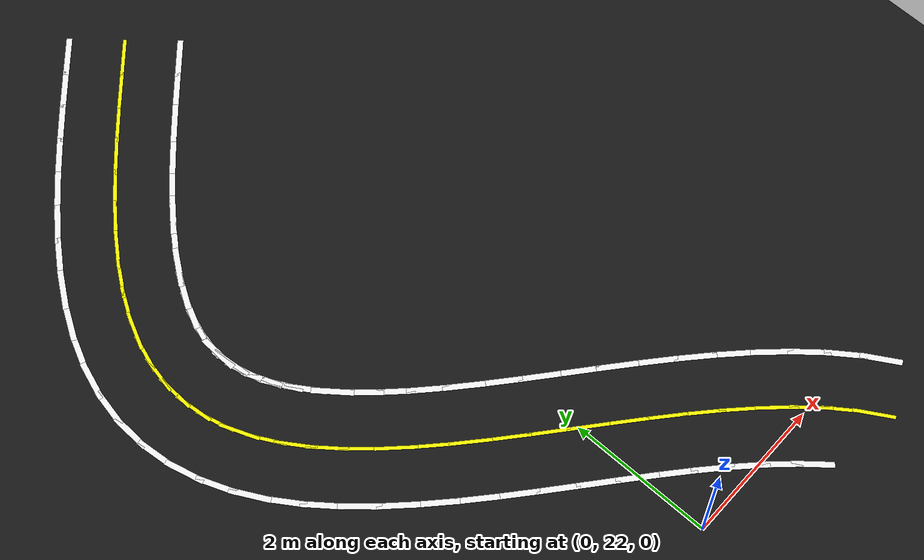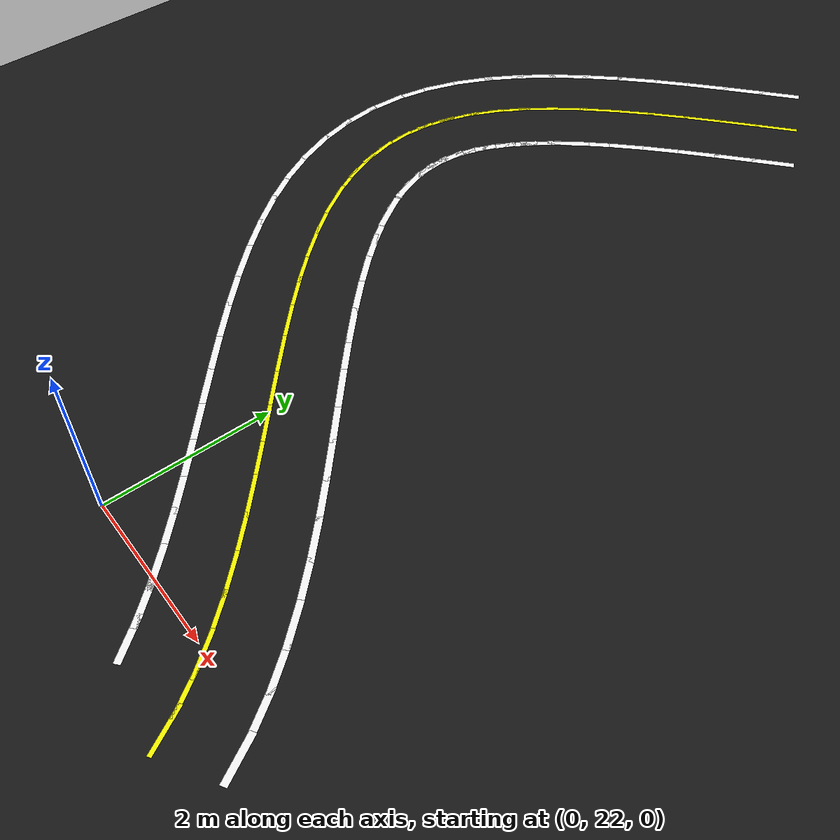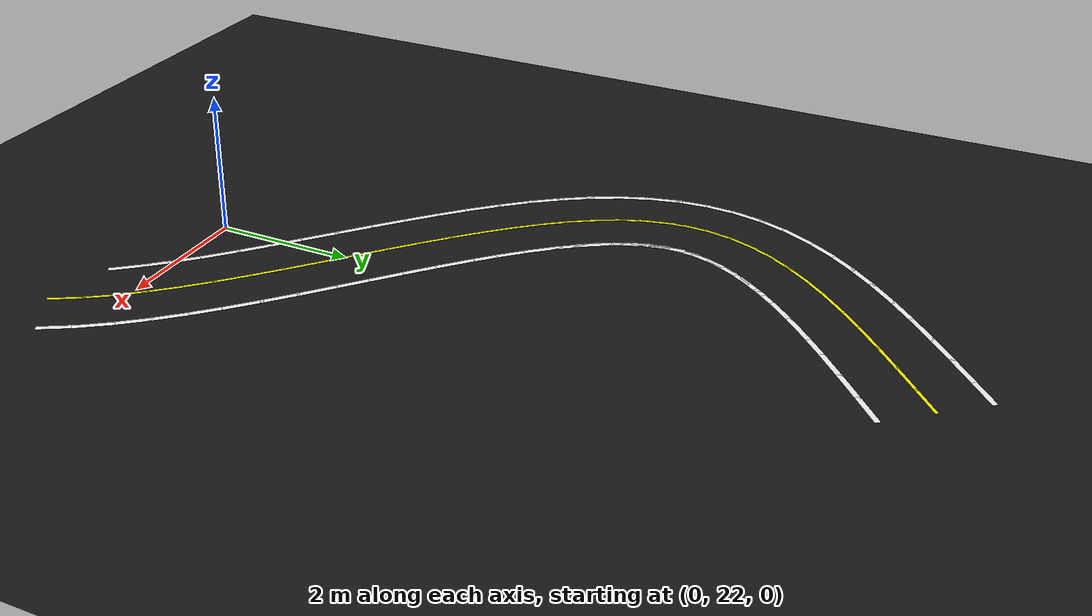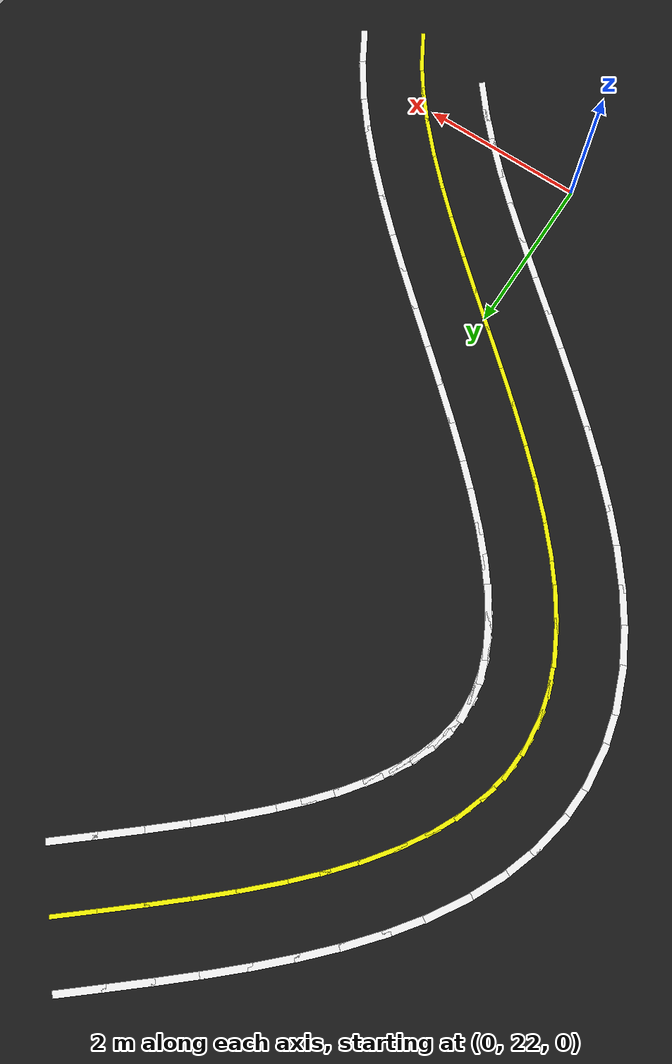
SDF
<sdf version="1.6">
 <world name="double_s_lane_world">
  <model name="ground">
   <static>true</static>
   <link name="link">
    <visual name="v">
     <geometry><plane><normal>0 0 1</normal><size>100 100</size></plane></geometry>
     <material><ambient>0.10 0.10 0.10 1</ambient><diffuse>0.10 0.10 0.10 1</diffuse></material>
    </visual>
    <collision name="c"><geometry><plane><normal>0 0 1</normal><size>100 100</size></plane></geometry></collision>
   </link>
  </model>
  <model name="seg_0199">
   <static>true</static>
   <pose>3.2443 21.7140 0.002 0 0 2.1031</pose>
   <link name="link">
    <visual name="v">
     <geometry><box><size>0.550 0.080 0.0020</size></box></geometry>
     <material><ambient>1 1 1 1</ambient><diffuse>1 1 1 1</diffuse></material>
    </visual>
   </link>
  </model>
  <model name="seg_0200">
   <static>true</static>
   <pose>2.5981 21.3333 0.002 0 0 2.1031</pose>
   <link name="link">
    <visual name="v">
     <geometry><box><size>0.550 0.050 0.0020</size></box></geometry>
     <material><ambient>1 1 0 1</ambient><diffuse>1 1 0 1</diffuse></material>
    </visual>
   </link>
  </model>
  <model name="seg_0202">
   <static>true</static>
   <pose>2.9978 22.0922 0.002 0 0 2.1905</pose>
   <link name="link">
    <visual name="v">
     <geometry><box><size>0.550 0.080 0.0020</size></box></geometry>
     <material><ambient>1 1 1 1</ambient><diffuse>1 1 1 1</diffuse></material>
    </visual>
   </link>
  </model>
  <model name="seg_0203">
   <static>true</static>
   <pose>2.3873 21.6566 0.002 0 0 2.1905</pose>
   <link name="link">
    <visual name="v">
     <geometry><box><size>0.550 0.050 0.0020</size></box></geometry>
     <material><ambient>1 1 0 1</ambient><diffuse>1 1 0 1</diffuse></material>
    </visual>
   </link>
  </model>
  <model name="seg_0204">
   <static>true</static>
   <pose>1.5600 21.5020 0.002 0 0 2.2614</pose>
   <link name="link">
    <visual name="v">
     <geometry><box><size>0.550 0.080 0.0020</size></box></geometry>
     <material><ambient>1 1 1 1</ambient><diffuse>1 1 1 1</diffuse></material>
    </visual>
   </link>
  </model>
  <model name="seg_0205">
   <static>true</static>
   <pose>2.7162 22.4576 0.002 0 0 2.2614</pose>
   <link name="link">
    <visual name="v">
     <geometry><box><size>0.550 0.080 0.0020</size></box></geometry>
     <material><ambient>1 1 1 1</ambient><diffuse>1 1 1 1</diffuse></material>
    </visual>
   </link>
  </model>
  <model name="seg_0206">
   <static>true</static>
   <pose>2.1381 21.9798 0.002 0 0 2.2614</pose>
   <link name="link">
    <visual name="v">
     <geometry><box><size>0.550 0.050 0.0020</size></box></geometry>
     <material><ambient>1 1 0 1</ambient><diffuse>1 1 0 1</diffuse></material>
    </visual>
   </link>
  </model>
  <model name="seg_0207">
   <static>true</static>
   <pose>1.3042 21.7934 0.002 0 0 2.3178</pose>
   <link name="link">
    <visual name="v">
     <geometry><box><size>0.550 0.080 0.0020</size></box></geometry>
     <material><ambient>1 1 1 1</ambient><diffuse>1 1 1 1</diffuse></material>
    </visual>
   </link>
  </model>
  <model name="seg_0208">
   <static>true</static>
   <pose>2.4048 22.8126 0.002 0 0 2.3178</pose>
   <link name="link">
    <visual name="v">
     <geometry><box><size>0.550 0.080 0.0020</size></box></geometry>
     <material><ambient>1 1 1 1</ambient><diffuse>1 1 1 1</diffuse></material>
    </visual>
   </link>
  </model>
  <model name="seg_0209">
   <static>true</static>
   <pose>1.8545 22.3030 0.002 0 0 2.3178</pose>
   <link name="link">
    <visual name="v">
     <geometry><box><size>0.550 0.050 0.0020</size></box></geometry>
     <material><ambient>1 1 0 1</ambient><diffuse>1 1 0 1</diffuse></material>
    </visual>
   </link>
  </model>
  <model name="seg_0210">
   <static>true</static>
   <pose>1.0136 22.0931 0.002 0 0 2.3616</pose>
   <link name="link">
    <visual name="v">
     <geometry><box><size>0.550 0.080 0.0020</size></box></geometry>
     <material><ambient>1 1 1 1</ambient><diffuse>1 1 1 1</diffuse></material>
    </visual>
   </link>
  </model>
  <model name="seg_0211">
   <static>true</static>
   <pose>2.0685 23.1594 0.002 0 0 2.3616</pose>
   <link name="link">
    <visual name="v">
     <geometry><box><size>0.550 0.080 0.0020</size></box></geometry>
     <material><ambient>1 1 1 1</ambient><diffuse>1 1 1 1</diffuse></material>
    </visual>
   </link>
  </model>
  <model name="seg_0212">
   <static>true</static>
   <pose>1.5410 22.6263 0.002 0 0 2.3616</pose>
   <link name="link">
    <visual name="v">
     <geometry><box><size>0.550 0.050 0.0020</size></box></geometry>
     <material><ambient>1 1 0 1</ambient><diffuse>1 1 0 1</diffuse></material>
    </visual>
   </link>
  </model>
  <model name="seg_0213">
   <static>true</static>
   <pose>0.6930 22.3993 0.002 0 0 2.3943</pose>
   <link name="link">
    <visual name="v">
     <geometry><box><size>0.550 0.080 0.0020</size></box></geometry>
     <material><ambient>1 1 1 1</ambient><diffuse>1 1 1 1</diffuse></material>
    </visual>
   </link>
  </model>
  <model name="seg_0214">
   <static>true</static>
   <pose>1.7125 23.4996 0.002 0 0 2.3943</pose>
   <link name="link">
    <visual name="v">
     <geometry><box><size>0.550 0.080 0.0020</size></box></geometry>
     <material><ambient>1 1 1 1</ambient><diffuse>1 1 1 1</diffuse></material>
    </visual>
   </link>
  </model>
  <model name="seg_0215">
   <static>true</static>
   <pose>1.2028 22.9495 0.002 0 0 2.3943</pose>
   <link name="link">
    <visual name="v">
     <geometry><box><size>0.550 0.050 0.0020</size></box></geometry>
     <material><ambient>1 1 0 1</ambient><diffuse>1 1 0 1</diffuse></material>
    </visual>
   </link>
  </model>
  <model name="seg_0216">
   <static>true</static>
   <pose>0.3483 22.7110 0.002 0 0 2.4173</pose>
   <link name="link">
    <visual name="v">
     <geometry><box><size>0.550 0.080 0.0020</size></box></geometry>
     <material><ambient>1 1 1 1</ambient><diffuse>1 1 1 1</diffuse></material>
    </visual>
   </link>
  </model>
  <model name="seg_0217">
   <static>true</static>
   <pose>1.3421 23.8345 0.002 0 0 2.4173</pose>
   <link name="link">
    <visual name="v">
     <geometry><box><size>0.550 0.080 0.0020</size></box></geometry>
     <material><ambient>1 1 1 1</ambient><diffuse>1 1 1 1</diffuse></material>
    </visual>
   </link>
  </model>
  <model name="seg_0218">
   <static>true</static>
   <pose>0.8452 23.2727 0.002 0 0 2.4173</pose>
   <link name="link">
    <visual name="v">
     <geometry><box><size>0.550 0.050 0.0020</size></box></geometry>
     <material><ambient>1 1 0 1</ambient><diffuse>1 1 0 1</diffuse></material>
    </visual>
   </link>
  </model>
  <model name="seg_0219">
   <static>true</static>
   <pose>-0.0149 23.0272 0.002 0 0 2.4315</pose>
   <link name="link">
    <visual name="v">
     <geometry><box><size>0.550 0.080 0.0020</size></box></geometry>
     <material><ambient>1 1 1 1</ambient><diffuse>1 1 1 1</diffuse></material>
    </visual>
   </link>
  </model>
  <model name="seg_0220">
   <static>true</static>
   <pose>0.9629 24.1647 0.002 0 0 2.4315</pose>
   <link name="link">
    <visual name="v">
     <geometry><box><size>0.550 0.080 0.0020</size></box></geometry>
     <material><ambient>1 1 1 1</ambient><diffuse>1 1 1 1</diffuse></material>
    </visual>
   </link>
  </model>
  <model name="seg_0221">
   <static>true</static>
   <pose>0.4740 23.5960 0.002 0 0 2.4315</pose>
   <link name="link">
    <visual name="v">
     <geometry><box><size>0.550 0.050 0.0020</size></box></geometry>
     <material><ambient>1 1 0 1</ambient><diffuse>1 1 0 1</diffuse></material>
    </visual>
   </link>
  </model>
  <model name="seg_0222">
   <static>true</static>
   <pose>-0.3903 23.3475 0.002 0 0 2.4375</pose>
   <link name="link">
    <visual name="v">
     <geometry><box><size>0.550 0.080 0.0020</size></box></geometry>
     <material><ambient>1 1 1 1</ambient><diffuse>1 1 1 1</diffuse></material>
    </visual>
   </link>
  </model>
  <model name="seg_0223">
   <static>true</static>
   <pose>0.5807 24.4909 0.002 0 0 2.4375</pose>
   <link name="link">
    <visual name="v">
     <geometry><box><size>0.550 0.080 0.0020</size></box></geometry>
     <material><ambient>1 1 1 1</ambient><diffuse>1 1 1 1</diffuse></material>
    </visual>
   </link>
  </model>
  <model name="seg_0224">
   <static>true</static>
   <pose>0.0952 23.9192 0.002 0 0 2.4375</pose>
   <link name="link">
    <visual name="v">
     <geometry><box><size>0.550 0.050 0.0020</size></box></geometry>
     <material><ambient>1 1 0 1</ambient><diffuse>1 1 0 1</diffuse></material>
    </visual>
   </link>
  </model>
  <model name="seg_0225">
   <static>true</static>
   <pose>-0.7718 23.6717 0.002 0 0 2.4355</pose>
   <link name="link">
    <visual name="v">
     <geometry><box><size>0.550 0.080 0.0020</size></box></geometry>
     <material><ambient>1 1 1 1</ambient><diffuse>1 1 1 1</diffuse></material>
    </visual>
   </link>
  </model>
  <model name="seg_0226">
   <static>true</static>
   <pose>0.2015 24.8131 0.002 0 0 2.4355</pose>
   <link name="link">
    <visual name="v">
     <geometry><box><size>0.550 0.080 0.0020</size></box></geometry>
     <material><ambient>1 1 1 1</ambient><diffuse>1 1 1 1</diffuse></material>
    </visual>
   </link>
  </model>
  <model name="seg_0227">
   <static>true</static>
   <pose>-0.2852 24.2424 0.002 0 0 2.4355</pose>
   <link name="link">
    <visual name="v">
     <geometry><box><size>0.550 0.050 0.0020</size></box></geometry>
     <material><ambient>1 1 0 1</ambient><diffuse>1 1 0 1</diffuse></material>
    </visual>
   </link>
  </model>
  <model name="seg_0228">
   <static>true</static>
   <pose>-1.1533 23.9999 0.002 0 0 2.4255</pose>
   <link name="link">
    <visual name="v">
     <geometry><box><size>0.550 0.080 0.0020</size></box></geometry>
     <material><ambient>1 1 1 1</ambient><diffuse>1 1 1 1</diffuse></material>
    </visual>
   </link>
  </model>
  <model name="seg_0229">
   <static>true</static>
   <pose>-0.1686 25.1314 0.002 0 0 2.4255</pose>
   <link name="link">
    <visual name="v">
     <geometry><box><size>0.550 0.080 0.0020</size></box></geometry>
     <material><ambient>1 1 1 1</ambient><diffuse>1 1 1 1</diffuse></material>
    </visual>
   </link>
  </model>
  <model name="seg_0230">
   <static>true</static>
   <pose>-0.6609 24.5657 0.002 0 0 2.4255</pose>
   <link name="link">
    <visual name="v">
     <geometry><box><size>0.550 0.050 0.0020</size></box></geometry>
     <material><ambient>1 1 0 1</ambient><diffuse>1 1 0 1</diffuse></material>
    </visual>
   </link>
  </model>
  <model name="seg_0231">
   <static>true</static>
   <pose>-1.5288 24.3323 0.002 0 0 2.4070</pose>
   <link name="link">
    <visual name="v">
     <geometry><box><size>0.550 0.080 0.0020</size></box></geometry>
     <material><ambient>1 1 1 1</ambient><diffuse>1 1 1 1</diffuse></material>
    </visual>
   </link>
  </model>
  <model name="seg_0232">
   <static>true</static>
   <pose>-0.5233 25.4454 0.002 0 0 2.4070</pose>
   <link name="link">
    <visual name="v">
     <geometry><box><size>0.550 0.080 0.0020</size></box></geometry>
     <material><ambient>1 1 1 1</ambient><diffuse>1 1 1 1</diffuse></material>
    </visual>
   </link>
  </model>
  <model name="seg_0233">
   <static>true</static>
   <pose>-1.0261 24.8889 0.002 0 0 2.4070</pose>
   <link name="link">
    <visual name="v">
     <geometry><box><size>0.550 0.050 0.0020</size></box></geometry>
     <material><ambient>1 1 0 1</ambient><diffuse>1 1 0 1</diffuse></material>
    </visual>
   </link>
  </model>
  <model name="seg_0234">
   <static>true</static>
   <pose>-1.8927 24.6697 0.002 0 0 2.3792</pose>
   <link name="link">
    <visual name="v">
     <geometry><box><size>0.550 0.080 0.0020</size></box></geometry>
     <material><ambient>1 1 1 1</ambient><diffuse>1 1 1 1</diffuse></material>
    </visual>
   </link>
  </model>
  <model name="seg_0235">
   <static>true</static>
   <pose>-0.8567 25.7545 0.002 0 0 2.3792</pose>
   <link name="link">
    <visual name="v">
     <geometry><box><size>0.550 0.080 0.0020</size></box></geometry>
     <material><ambient>1 1 1 1</ambient><diffuse>1 1 1 1</diffuse></material>
    </visual>
   </link>
  </model>
  <model name="seg_0236">
   <static>true</static>
   <pose>-1.3747 25.2121 0.002 0 0 2.3792</pose>
   <link name="link">
    <visual name="v">
     <geometry><box><size>0.550 0.050 0.0020</size></box></geometry>
     <material><ambient>1 1 0 1</ambient><diffuse>1 1 0 1</diffuse></material>
    </visual>
   </link>
  </model>
  <model name="seg_0237">
   <static>true</static>
   <pose>-2.2394 25.0131 0.002 0 0 2.3412</pose>
   <link name="link">
    <visual name="v">
     <geometry><box><size>0.550 0.080 0.0020</size></box></geometry>
     <material><ambient>1 1 1 1</ambient><diffuse>1 1 1 1</diffuse></material>
    </visual>
   </link>
  </model>
  <model name="seg_0238">
   <static>true</static>
   <pose>-1.1629 26.0576 0.002 0 0 2.3412</pose>
   <link name="link">
    <visual name="v">
     <geometry><box><size>0.550 0.080 0.0020</size></box></geometry>
     <material><ambient>1 1 1 1</ambient><diffuse>1 1 1 1</diffuse></material>
    </visual>
   </link>
  </model>
  <model name="seg_0239">
   <static>true</static>
   <pose>-1.7012 25.5354 0.002 0 0 2.3412</pose>
   <link name="link">
    <visual name="v">
     <geometry><box><size>0.550 0.050 0.0020</size></box></geometry>
     <material><ambient>1 1 0 1</ambient><diffuse>1 1 0 1</diffuse></material>
    </visual>
   </link>
  </model>
  <model name="seg_0240">
   <static>true</static>
   <pose>-2.5639 25.3638 0.002 0 0 2.2913</pose>
   <link name="link">
    <visual name="v">
     <geometry><box><size>0.550 0.080 0.0020</size></box></geometry>
     <material><ambient>1 1 1 1</ambient><diffuse>1 1 1 1</diffuse></material>
    </visual>
   </link>
  </model>
  <model name="seg_0241">
   <static>true</static>
   <pose>-1.4367 26.3534 0.002 0 0 2.2913</pose>
   <link name="link">
    <visual name="v">
     <geometry><box><size>0.550 0.080 0.0020</size></box></geometry>
     <material><ambient>1 1 1 1</ambient><diffuse>1 1 1 1</diffuse></material>
    </visual>
   </link>
  </model>
  <model name="seg_0242">
   <static>true</static>
   <pose>-2.0003 25.8586 0.002 0 0 2.2913</pose>
   <link name="link">
    <visual name="v">
     <geometry><box><size>0.550 0.050 0.0020</size></box></geometry>
     <material><ambient>1 1 0 1</ambient><diffuse>1 1 0 1</diffuse></material>
    </visual>
   </link>
  </model>
  <model name="seg_0243">
   <static>true</static>
   <pose>-2.8611 25.7237 0.002 0 0 2.2279</pose>
   <link name="link">
    <visual name="v">
     <geometry><box><size>0.550 0.080 0.0020</size></box></geometry>
     <material><ambient>1 1 1 1</ambient><diffuse>1 1 1 1</diffuse></material>
    </visual>
   </link>
  </model>
  <model name="seg_0244">
   <static>true</static>
   <pose>-1.6734 26.6399 0.002 0 0 2.2279</pose>
   <link name="link">
    <visual name="v">
     <geometry><box><size>0.550 0.080 0.0020</size></box></geometry>
     <material><ambient>1 1 1 1</ambient><diffuse>1 1 1 1</diffuse></material>
    </visual>
   </link>
  </model>
  <model name="seg_0245">
   <static>true</static>
   <pose>-2.2672 26.1818 0.002 0 0 2.2279</pose>
   <link name="link">
    <visual name="v">
     <geometry><box><size>0.550 0.050 0.0020</size></box></geometry>
     <material><ambient>1 1 0 1</ambient><diffuse>1 1 0 1</diffuse></material>
    </visual>
   </link>
  </model>
  <model name="seg_0246">
   <static>true</static>
   <pose>-3.1258 26.0952 0.002 0 0 2.1490</pose>
   <link name="link">
    <visual name="v">
     <geometry><box><size>0.550 0.080 0.0020</size></box></geometry>
     <material><ambient>1 1 1 1</ambient><diffuse>1 1 1 1</diffuse></material>
    </visual>
   </link>
  </model>
  <model name="seg_0247">
   <static>true</static>
   <pose>-1.8696 26.9149 0.002 0 0 2.1490</pose>
   <link name="link">
    <visual name="v">
     <geometry><box><size>0.550 0.080 0.0020</size></box></geometry>
     <material><ambient>1 1 1 1</ambient><diffuse>1 1 1 1</diffuse></material>
    </visual>
   </link>
  </model>
  <model name="seg_0248">
   <static>true</static>
   <pose>-2.4977 26.5051 0.002 0 0 2.1490</pose>
   <link name="link">
    <visual name="v">
     <geometry><box><size>0.550 0.050 0.0020</size></box></geometry>
     <material><ambient>1 1 0 1</ambient><diffuse>1 1 0 1</diffuse></material>
    </visual>
   </link>
  </model>
  <model name="seg_0249">
   <static>true</static>
   <pose>-3.3525 26.4806 0.002 0 0 2.0528</pose>
   <link name="link">
    <visual name="v">
     <geometry><box><size>0.550 0.080 0.0020</size></box></geometry>
     <material><ambient>1 1 1 1</ambient><diffuse>1 1 1 1</diffuse></material>
    </visual>
   </link>
  </model>
  <model name="seg_0250">
   <static>true</static>
   <pose>-2.0234 27.1759 0.002 0 0 2.0528</pose>
   <link name="link">
    <visual name="v">
     <geometry><box><size>0.550 0.080 0.0020</size></box></geometry>
     <material><ambient>1 1 1 1</ambient><diffuse>1 1 1 1</diffuse></material>
    </visual>
   </link>
  </model>
  <model name="seg_0251">
   <static>true</static>
   <pose>-2.6880 26.8283 0.002 0 0 2.0528</pose>
   <link name="link">
    <visual name="v">
     <geometry><box><size>0.550 0.050 0.0020</size></box></geometry>
     <material><ambient>1 1 0 1</ambient><diffuse>1 1 0 1</diffuse></material>
    </visual>
   </link>
  </model>
  <model name="seg_0252">
   <static>true</static>
   <pose>-3.5348 26.8819 0.002 0 0 1.9386</pose>
   <link name="link">
    <visual name="v">
     <geometry><box><size>0.550 0.080 0.0020</size></box></geometry>
     <material><ambient>1 1 1 1</ambient><diffuse>1 1 1 1</diffuse></material>
    </visual>
   </link>
  </model>
  <model name="seg_0253">
   <static>true</static>
   <pose>-2.1352 27.4212 0.002 0 0 1.9386</pose>
   <link name="link">
    <visual name="v">
     <geometry><box><size>0.550 0.080 0.0020</size></box></geometry>
     <material><ambient>1 1 1 1</ambient><diffuse>1 1 1 1</diffuse></material>
    </visual>
   </link>
  </model>
  <model name="seg_0254">
   <static>true</static>
   <pose>-2.8350 27.1515 0.002 0 0 1.9386</pose>
   <link name="link">
    <visual name="v">
     <geometry><box><size>0.550 0.050 0.0020</size></box></geometry>
     <material><ambient>1 1 0 1</ambient><diffuse>1 1 0 1</diffuse></material>
    </visual>
   </link>
  </model>
  <model name="seg_0255">
   <static>true</static>
   <pose>-3.6655 27.2988 0.002 0 0 1.8076</pose>
   <link name="link">
    <visual name="v">
     <geometry><box><size>0.550 0.080 0.0020</size></box></geometry>
     <material><ambient>1 1 1 1</ambient><diffuse>1 1 1 1</diffuse></material>
    </visual>
   </link>
  </model>
  <model name="seg_0256">
   <static>true</static>
   <pose>-2.2073 27.6507 0.002 0 0 1.8076</pose>
   <link name="link">
    <visual name="v">
     <geometry><box><size>0.550 0.080 0.0020</size></box></geometry>
     <material><ambient>1 1 1 1</ambient><diffuse>1 1 1 1</diffuse></material>
    </visual>
   </link>
  </model>
  <model name="seg_0257">
   <static>true</static>
   <pose>-2.9364 27.4747 0.002 0 0 1.8076</pose>
   <link name="link">
    <visual name="v">
     <geometry><box><size>0.550 0.050 0.0020</size></box></geometry>
     <material><ambient>1 1 0 1</ambient><diffuse>1 1 0 1</diffuse></material>
    </visual>
   </link>
  </model>
  <model name="seg_0258">
   <static>true</static>
   <pose>-3.7373 27.7283 0.002 0 0 1.6639</pose>
   <link name="link">
    <visual name="v">
     <geometry><box><size>0.550 0.080 0.0020</size></box></geometry>
     <material><ambient>1 1 1 1</ambient><diffuse>1 1 1 1</diffuse></material>
    </visual>
   </link>
  </model>
  <model name="seg_0259">
   <static>true</static>
   <pose>-2.2438 27.8677 0.002 0 0 1.6639</pose>
   <link name="link">
    <visual name="v">
     <geometry><box><size>0.550 0.080 0.0020</size></box></geometry>
     <material><ambient>1 1 1 1</ambient><diffuse>1 1 1 1</diffuse></material>
    </visual>
   </link>
  </model>
  <model name="seg_0260">
   <static>true</static>
   <pose>-2.9906 27.7980 0.002 0 0 1.6639</pose>
   <link name="link">
    <visual name="v">
     <geometry><box><size>0.550 0.050 0.0020</size></box></geometry>
     <material><ambient>1 1 0 1</ambient><diffuse>1 1 0 1</diffuse></material>
    </visual>
   </link>
  </model>
  <model name="seg_0261">
   <static>true</static>
   <pose>-3.7454 28.1632 0.002 0 0 1.5148</pose>
   <link name="link">
    <visual name="v">
     <geometry><box><size>0.550 0.080 0.0020</size></box></geometry>
     <material><ambient>1 1 1 1</ambient><diffuse>1 1 1 1</diffuse></material>
    </visual>
   </link>
  </model>
  <model name="seg_0262">
   <static>true</static>
   <pose>-2.2478 28.0792 0.002 0 0 1.5148</pose>
   <link name="link">
    <visual name="v">
     <geometry><box><size>0.550 0.080 0.0020</size></box></geometry>
     <material><ambient>1 1 1 1</ambient><diffuse>1 1 1 1</diffuse></material>
    </visual>
   </link>
  </model>
  <model name="seg_0263">
   <static>true</static>
   <pose>-2.9966 28.1212 0.002 0 0 1.5148</pose>
   <link name="link">
    <visual name="v">
     <geometry><box><size>0.550 0.050 0.0020</size></box></geometry>
     <material><ambient>1 1 0 1</ambient><diffuse>1 1 0 1</diffuse></material>
    </visual>
   </link>
  </model>
  <model name="seg_0264">
   <static>true</static>
   <pose>-3.6892 28.5948 0.002 0 0 1.3690</pose>
   <link name="link">
    <visual name="v">
     <geometry><box><size>0.550 0.080 0.0020</size></box></geometry>
     <material><ambient>1 1 1 1</ambient><diffuse>1 1 1 1</diffuse></material>
    </visual>
   </link>
  </model>
  <model name="seg_0265">
   <static>true</static>
   <pose>-2.2196 28.2941 0.002 0 0 1.3690</pose>
   <link name="link">
    <visual name="v">
     <geometry><box><size>0.550 0.080 0.0020</size></box></geometry>
     <material><ambient>1 1 1 1</ambient><diffuse>1 1 1 1</diffuse></material>
    </visual>
   </link>
  </model>
  <model name="seg_0266">
   <static>true</static>
   <pose>-2.9544 28.4444 0.002 0 0 1.3690</pose>
   <link name="link">
    <visual name="v">
     <geometry><box><size>0.550 0.050 0.0020</size></box></geometry>
     <material><ambient>1 1 0 1</ambient><diffuse>1 1 0 1</diffuse></material>
    </visual>
   </link>
  </model>
  <model name="seg_0267">
   <static>true</static>
   <pose>-3.5726 29.0153 0.002 0 0 1.2343</pose>
   <link name="link">
    <visual name="v">
     <geometry><box><size>0.550 0.080 0.0020</size></box></geometry>
     <material><ambient>1 1 1 1</ambient><diffuse>1 1 1 1</diffuse></material>
    </visual>
   </link>
  </model>
  <model name="seg_0268">
   <static>true</static>
   <pose>-2.1568 28.5200 0.002 0 0 1.2343</pose>
   <link name="link">
    <visual name="v">
     <geometry><box><size>0.550 0.080 0.0020</size></box></geometry>
     <material><ambient>1 1 1 1</ambient><diffuse>1 1 1 1</diffuse></material>
    </visual>
   </link>
  </model>
  <model name="seg_0269">
   <static>true</static>
   <pose>-2.8647 28.7677 0.002 0 0 1.2343</pose>
   <link name="link">
    <visual name="v">
     <geometry><box><size>0.550 0.050 0.0020</size></box></geometry>
     <material><ambient>1 1 0 1</ambient><diffuse>1 1 0 1</diffuse></material>
    </visual>
   </link>
  </model>
  <model name="seg_0270">
   <static>true</static>
   <pose>-3.4025 29.4206 0.002 0 0 1.1157</pose>
   <link name="link">
    <visual name="v">
     <geometry><box><size>0.550 0.080 0.0020</size></box></geometry>
     <material><ambient>1 1 1 1</ambient><diffuse>1 1 1 1</diffuse></material>
    </visual>
   </link>
  </model>
  <model name="seg_0271">
   <static>true</static>
   <pose>-2.0552 28.7612 0.002 0 0 1.1157</pose>
   <link name="link">
    <visual name="v">
     <geometry><box><size>0.550 0.080 0.0020</size></box></geometry>
     <material><ambient>1 1 1 1</ambient><diffuse>1 1 1 1</diffuse></material>
    </visual>
   </link>
  </model>
  <model name="seg_0272">
   <static>true</static>
   <pose>-2.7289 29.0909 0.002 0 0 1.1157</pose>
   <link name="link">
    <visual name="v">
     <geometry><box><size>0.550 0.050 0.0020</size></box></geometry>
     <material><ambient>1 1 0 1</ambient><diffuse>1 1 0 1</diffuse></material>
    </visual>
   </link>
  </model>
  <model name="seg_0273">
   <static>true</static>
   <pose>-3.1863 29.8099 0.002 0 0 1.0150</pose>
   <link name="link">
    <visual name="v">
     <geometry><box><size>0.550 0.080 0.0020</size></box></geometry>
     <material><ambient>1 1 1 1</ambient><diffuse>1 1 1 1</diffuse></material>
    </visual>
   </link>
  </model>
  <model name="seg_0274">
   <static>true</static>
   <pose>-1.9121 29.0184 0.002 0 0 1.0150</pose>
   <link name="link">
    <visual name="v">
     <geometry><box><size>0.550 0.080 0.0020</size></box></geometry>
     <material><ambient>1 1 1 1</ambient><diffuse>1 1 1 1</diffuse></material>
    </visual>
   </link>
  </model>
  <model name="seg_0275">
   <static>true</static>
   <pose>-2.5492 29.4141 0.002 0 0 1.0150</pose>
   <link name="link">
    <visual name="v">
     <geometry><box><size>0.550 0.050 0.0020</size></box></geometry>
     <material><ambient>1 1 0 1</ambient><diffuse>1 1 0 1</diffuse></material>
    </visual>
   </link>
  </model>
  <model name="seg_0276">
   <static>true</static>
   <pose>-2.9305 30.1846 0.002 0 0 0.9319</pose>
   <link name="link">
    <visual name="v">
     <geometry><box><size>0.550 0.080 0.0020</size></box></geometry>
     <material><ambient>1 1 1 1</ambient><diffuse>1 1 1 1</diffuse></material>
    </visual>
   </link>
  </model>
  <model name="seg_0277">
   <static>true</static>
   <pose>-1.7264 29.2901 0.002 0 0 0.9319</pose>
   <link name="link">
    <visual name="v">
     <geometry><box><size>0.550 0.080 0.0020</size></box></geometry>
     <material><ambient>1 1 1 1</ambient><diffuse>1 1 1 1</diffuse></material>
    </visual>
   </link>
  </model>
  <model name="seg_0278">
   <static>true</static>
   <pose>-2.3284 29.7374 0.002 0 0 0.9319</pose>
   <link name="link">
    <visual name="v">
     <geometry><box><size>0.550 0.050 0.0020</size></box></geometry>
     <material><ambient>1 1 0 1</ambient><diffuse>1 1 0 1</diffuse></material>
    </visual>
   </link>
  </model>
  <model name="seg_0279">
   <static>true</static>
   <pose>-2.6410 30.5472 0.002 0 0 0.8648</pose>
   <link name="link">
    <visual name="v">
     <geometry><box><size>0.550 0.080 0.0020</size></box></geometry>
     <material><ambient>1 1 1 1</ambient><diffuse>1 1 1 1</diffuse></material>
    </visual>
   </link>
  </model>
  <model name="seg_0280">
   <static>true</static>
   <pose>-1.4995 29.5740 0.002 0 0 0.8648</pose>
   <link name="link">
    <visual name="v">
     <geometry><box><size>0.550 0.080 0.0020</size></box></geometry>
     <material><ambient>1 1 1 1</ambient><diffuse>1 1 1 1</diffuse></material>
    </visual>
   </link>
  </model>
  <model name="seg_0281">
   <static>true</static>
   <pose>-2.0702 30.0606 0.002 0 0 0.8648</pose>
   <link name="link">
    <visual name="v">
     <geometry><box><size>0.550 0.050 0.0020</size></box></geometry>
     <material><ambient>1 1 0 1</ambient><diffuse>1 1 0 1</diffuse></material>
    </visual>
   </link>
  </model>
  <model name="seg_0282">
   <static>true</static>
   <pose>-2.3228 30.9000 0.002 0 0 0.8117</pose>
   <link name="link">
    <visual name="v">
     <geometry><box><size>0.550 0.080 0.0020</size></box></geometry>
     <material><ambient>1 1 1 1</ambient><diffuse>1 1 1 1</diffuse></material>
    </visual>
   </link>
  </model>
  <model name="seg_0283">
   <static>true</static>
   <pose>-1.2346 29.8677 0.002 0 0 0.8117</pose>
   <link name="link">
    <visual name="v">
     <geometry><box><size>0.550 0.080 0.0020</size></box></geometry>
     <material><ambient>1 1 1 1</ambient><diffuse>1 1 1 1</diffuse></material>
    </visual>
   </link>
  </model>
  <model name="seg_0284">
   <static>true</static>
   <pose>-1.7787 30.3838 0.002 0 0 0.8117</pose>
   <link name="link">
    <visual name="v">
     <geometry><box><size>0.550 0.050 0.0020</size></box></geometry>
     <material><ambient>1 1 0 1</ambient><diffuse>1 1 0 1</diffuse></material>
    </visual>
   </link>
  </model>
  <model name="seg_0285">
   <static>true</static>
   <pose>-1.9812 31.2450 0.002 0 0 0.7709</pose>
   <link name="link">
    <visual name="v">
     <geometry><box><size>0.550 0.080 0.0020</size></box></geometry>
     <material><ambient>1 1 1 1</ambient><diffuse>1 1 1 1</diffuse></material>
    </visual>
   </link>
  </model>
  <model name="seg_0286">
   <static>true</static>
   <pose>-0.9360 30.1691 0.002 0 0 0.7709</pose>
   <link name="link">
    <visual name="v">
     <geometry><box><size>0.550 0.080 0.0020</size></box></geometry>
     <material><ambient>1 1 1 1</ambient><diffuse>1 1 1 1</diffuse></material>
    </visual>
   </link>
  </model>
  <model name="seg_0287">
   <static>true</static>
   <pose>-1.4586 30.7071 0.002 0 0 0.7709</pose>
   <link name="link">
    <visual name="v">
     <geometry><box><size>0.550 0.050 0.0020</size></box></geometry>
     <material><ambient>1 1 0 1</ambient><diffuse>1 1 0 1</diffuse></material>
    </visual>
   </link>
  </model>
  <model name="seg_0288">
   <static>true</static>
   <pose>-1.6211 31.5838 0.002 0 0 0.7407</pose>
   <link name="link">
    <visual name="v">
     <geometry><box><size>0.550 0.080 0.0020</size></box></geometry>
     <material><ambient>1 1 1 1</ambient><diffuse>1 1 1 1</diffuse></material>
    </visual>
   </link>
  </model>
  <model name="seg_0289">
   <static>true</static>
   <pose>-0.6089 30.4768 0.002 0 0 0.7407</pose>
   <link name="link">
    <visual name="v">
     <geometry><box><size>0.550 0.080 0.0020</size></box></geometry>
     <material><ambient>1 1 1 1</ambient><diffuse>1 1 1 1</diffuse></material>
    </visual>
   </link>
  </model>
  <model name="seg_0290">
   <static>true</static>
   <pose>-1.1150 31.0303 0.002 0 0 0.7407</pose>
   <link name="link">
    <visual name="v">
     <geometry><box><size>0.550 0.050 0.0020</size></box></geometry>
     <material><ambient>1 1 0 1</ambient><diffuse>1 1 0 1</diffuse></material>
    </visual>
   </link>
  </model>
  <model name="seg_0291">
   <static>true</static>
   <pose>-1.2479 31.9174 0.002 0 0 0.7199</pose>
   <link name="link">
    <visual name="v">
     <geometry><box><size>0.550 0.080 0.0020</size></box></geometry>
     <material><ambient>1 1 1 1</ambient><diffuse>1 1 1 1</diffuse></material>
    </visual>
   </link>
  </model>
  <model name="seg_0292">
   <static>true</static>
   <pose>-0.2589 30.7896 0.002 0 0 0.7199</pose>
   <link name="link">
    <visual name="v">
     <geometry><box><size>0.550 0.080 0.0020</size></box></geometry>
     <material><ambient>1 1 1 1</ambient><diffuse>1 1 1 1</diffuse></material>
    </visual>
   </link>
  </model>
  <model name="seg_0293">
   <static>true</static>
   <pose>-0.7534 31.3535 0.002 0 0 0.7199</pose>
   <link name="link">
    <visual name="v">
     <geometry><box><size>0.550 0.050 0.0020</size></box></geometry>
     <material><ambient>1 1 0 1</ambient><diffuse>1 1 0 1</diffuse></material>
    </visual>
   </link>
  </model>
  <model name="seg_0294">
   <static>true</static>
   <pose>-0.8674 32.2466 0.002 0 0 0.7078</pose>
   <link name="link">
    <visual name="v">
     <geometry><box><size>0.550 0.080 0.0020</size></box></geometry>
     <material><ambient>1 1 1 1</ambient><diffuse>1 1 1 1</diffuse></material>
    </visual>
   </link>
  </model>
  <model name="seg_0295">
   <static>true</static>
   <pose>0.1078 31.1069 0.002 0 0 0.7078</pose>
   <link name="link">
    <visual name="v">
     <geometry><box><size>0.550 0.080 0.0020</size></box></geometry>
     <material><ambient>1 1 1 1</ambient><diffuse>1 1 1 1</diffuse></material>
    </visual>
   </link>
  </model>
  <model name="seg_0296">
   <static>true</static>
   <pose>-0.3798 31.6768 0.002 0 0 0.7078</pose>
   <link name="link">
    <visual name="v">
     <geometry><box><size>0.550 0.050 0.0020</size></box></geometry>
     <material><ambient>1 1 0 1</ambient><diffuse>1 1 0 1</diffuse></material>
    </visual>
   </link>
  </model>
  <model name="seg_0297">
   <static>true</static>
   <pose>-0.4853 32.5718 0.002 0 0 0.7038</pose>
   <link name="link">
    <visual name="v">
     <geometry><box><size>0.550 0.080 0.0020</size></box></geometry>
     <material><ambient>1 1 1 1</ambient><diffuse>1 1 1 1</diffuse></material>
    </visual>
   </link>
  </model>
  <model name="seg_0298">
   <static>true</static>
   <pose>0.4853 31.4282 0.002 0 0 0.7038</pose>
   <link name="link">
    <visual name="v">
     <geometry><box><size>0.550 0.080 0.0020</size></box></geometry>
     <material><ambient>1 1 1 1</ambient><diffuse>1 1 1 1</diffuse></material>
    </visual>
   </link>
  </model>
  <model name="seg_0299">
   <static>true</static>
   <pose>-0.0000 32.0000 0.002 0 0 0.7038</pose>
   <link name="link">
    <visual name="v">
     <geometry><box><size>0.550 0.050 0.0020</size></box></geometry>
     <material><ambient>1 1 0 1</ambient><diffuse>1 1 0 1</diffuse></material>
    </visual>
   </link>
  </model>
 </world>
</sdf>
